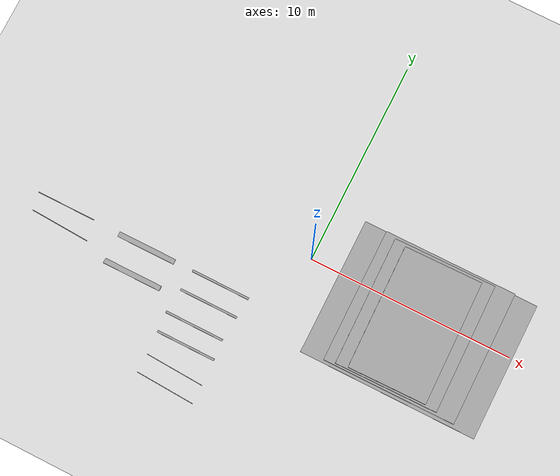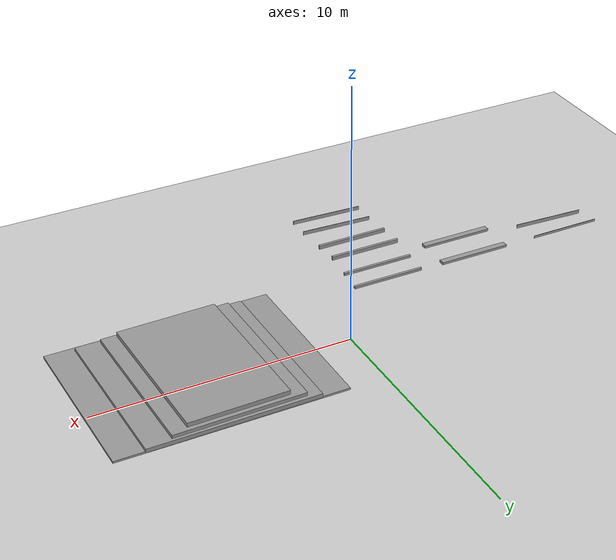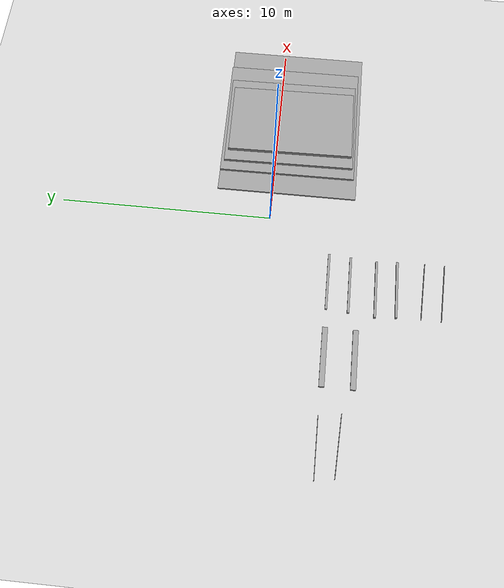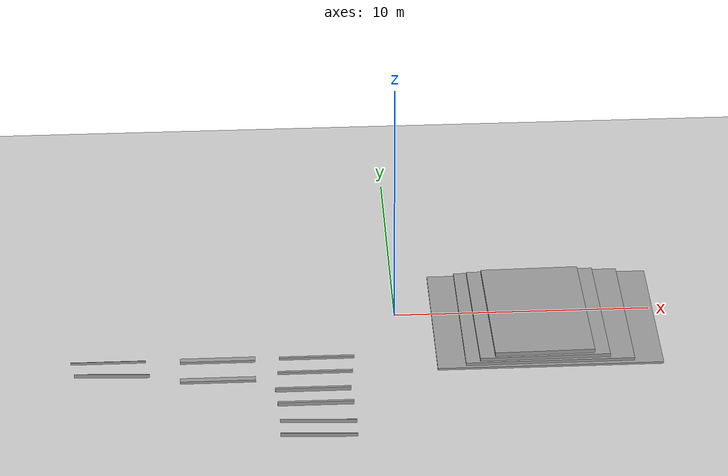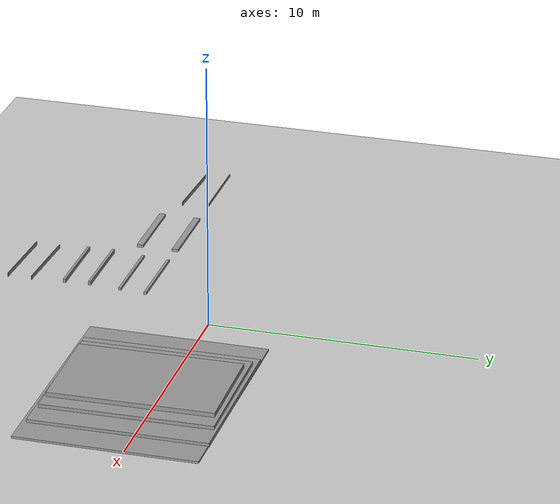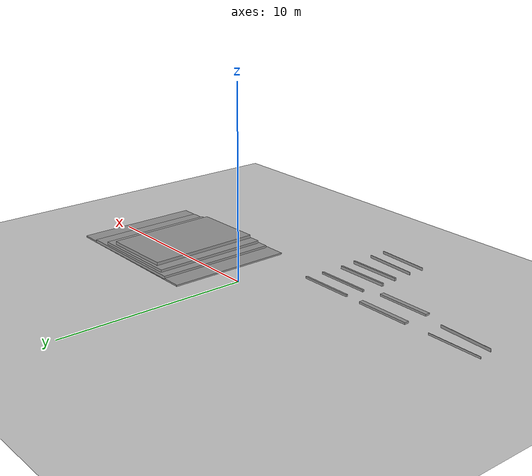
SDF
<sdf version="1.7">
 <world name="default">
  <model name="ground_plane">
   <static>1</static>
   <link name="link">
    <collision name="collision">
     <geometry><plane><normal>0 0 1</normal><size>100 100</size></plane></geometry>
     <surface><friction><ode><mu>0.7</mu><mu2>0.7</mu2></ode></friction></surface>
    </collision>
    <visual name="visual">
     <cast_shadows>0</cast_shadows>
     <geometry><plane><normal>0 0 1</normal><size>100 100</size></plane></geometry>
     <material>
      <script><uri>file://media/materials/scripts/gazebo.material</uri><name>Gazebo/Grey</name></script>
     </material>
    </visual>
   </link>
  </model>
  <light name="sun" type="directional">
   <pose>0 0 10 0 -0 0</pose>
   <diffuse>0.8 0.8 0.8 1</diffuse>
   <specular>0.1 0.1 0.1 1</specular>
   <attenuation>
    <range>1000</range>
    <constant>0.9</constant>
    <linear>0.01</linear>
    <quadratic>0.001</quadratic>
   </attenuation>
   <direction>-0.5 0.5 -1</direction>
   <spot><inner_angle>0</inner_angle><outer_angle>0</outer_angle><falloff>0</falloff></spot>
  </light>
  <gravity>0 0 -9.81</gravity>
  <magnetic_field>6e-06 2.3e-05 -4.2e-05</magnetic_field>
  <atmosphere type="adiabatic"/>
  <physics name="default_physics" default="0" type="ode">
   <max_step_size>0.001</max_step_size>
   <real_time_factor>1</real_time_factor>
   <real_time_update_rate>1000</real_time_update_rate>
  </physics>
  <scene><ambient>0.4 0.4 0.4 1</ambient><background>0.7 0.7 0.7 1</background><shadows>1</shadows></scene>
  <spherical_coordinates>
   <surface_model>EARTH_WGS84</surface_model>
   <latitude_deg>0</latitude_deg>
   <longitude_deg>0</longitude_deg>
   <elevation>0</elevation>
   <heading_deg>0</heading_deg>
  </spherical_coordinates>
  <model name="unit_box">
   <static>1</static>
   <pose>5.78133 -0.659851 0.038678 5e-06 1.5e-05 0.001025</pose>
   <link name="link">
    <inertial>
     <mass>1</mass>
     <inertia>
      <ixx>0.166667</ixx>
      <ixy>0</ixy>
      <ixz>0</ixz>
      <iyy>0.166667</iyy>
      <iyz>0</iyz>
      <izz>0.166667</izz>
     </inertia>
    </inertial>
    <collision name="collision"><geometry><box><size>8.68409 6.67615 0.0802598</size></box></geometry></collision>
    <visual name="visual">
     <geometry><box><size>8.68409 6.67615 0.0802598</size></box></geometry>
     <material>
      <script><name>Gazebo/Grey</name><uri>file://media/materials/scripts/gazebo.material</uri></script>
     </material>
    </visual>
   </link>
  </model>
  <model name="unit_box_clone_clone">
   <static>1</static>
   <pose>5.76077 -0.573205 0.117159 -1.3e-05 1e-05 0.006134</pose>
   <link name="link">
    <inertial>
     <mass>1</mass>
     <inertia>
      <ixx>0.166667</ixx>
      <ixy>0</ixy>
      <ixz>0</ixz>
      <iyy>0.166667</iyy>
      <iyz>0</iyz>
      <izz>0.166667</izz>
     </inertia>
    </inertial>
    <collision name="collision"><geometry><box><size>6.48949 6.53951 0.154753</size></box></geometry></collision>
    <visual name="visual">
     <geometry><box><size>6.48949 6.53951 0.154753</size></box></geometry>
     <material>
      <script><name>Gazebo/Grey</name><uri>file://media/materials/scripts/gazebo.material</uri></script>
     </material>
    </visual>
   </link>
  </model>
  <model name="unit_box_clone_clone_0">
   <static>1</static>
   <pose>5.54636 -0.5858 0.19901 -6.8e-05 1e-05 0.013495</pose>
   <link name="link">
    <inertial>
     <mass>1</mass>
     <inertia>
      <ixx>0.166667</ixx>
      <ixy>0</ixy>
      <ixz>0</ixz>
      <iyy>0.166667</iyy>
      <iyz>0</iyz>
      <izz>0.166667</izz>
     </inertia>
    </inertial>
    <collision name="collision"><geometry><box><size>5.00877 6.30633 0.260401</size></box></geometry></collision>
    <visual name="visual">
     <geometry><box><size>5.00877 6.30633 0.260401</size></box></geometry>
     <material>
      <script><name>Gazebo/Grey</name><uri>file://media/materials/scripts/gazebo.material</uri></script>
     </material>
    </visual>
   </link>
  </model>
  <model name="unit_box_clone_clone_1">
   <static>1</static>
   <pose>5.53214 -0.620934 0.422261 -6.9e-05 1e-05 0.016868</pose>
   <link name="link">
    <inertial>
     <mass>1</mass>
     <inertia>
      <ixx>0.166667</ixx>
      <ixy>0</ixy>
      <ixz>0</ixz>
      <iyy>0.166667</iyy>
      <iyz>0</iyz>
      <izz>0.166667</izz>
     </inertia>
    </inertial>
    <collision name="collision"><geometry><box><size>3.8324 6.06711 0.167446</size></box></geometry></collision>
    <visual name="visual">
     <geometry><box><size>3.8324 6.06711 0.167446</size></box></geometry>
     <material>
      <script><name>Gazebo/Grey</name><uri>file://media/materials/scripts/gazebo.material</uri></script>
     </material>
    </visual>
   </link>
  </model>
  <model name="unit_box_2">
   <link name="link">
    <inertial>
     <mass>1</mass>
     <inertia>
      <ixx>0.166667</ixx>
      <ixy>0</ixy>
      <ixz>0</ixz>
      <iyy>0.166667</iyy>
      <iyz>0</iyz>
      <izz>0.166667</izz>
     </inertia>
    </inertial>
    <visual name="visual">
     <geometry><box><size>2.87721 0.1 0.1</size></box></geometry>
     <material>
      <script><name>Gazebo/Grey</name><uri>file://media/materials/scripts/gazebo.material</uri></script>
      <shader type="pixel"><normal_map>__default__</normal_map></shader>
      <ambient>0.3 0.3 0.3 1</ambient>
      <diffuse>0.7 0.7 0.7 1</diffuse>
      <specular>0.01 0.01 0.01 1</specular>
      <emissive>0 0 0 1</emissive>
     </material>
    </visual>
    <collision name="collision">
     <geometry><box><size>2.87721 0.1 0.1</size></box></geometry>
     <surface>
      <friction>
       <ode><mu>1</mu><mu2>1</mu2><fdir1>0 0 0</fdir1><slip1>0</slip1><slip2>0</slip2></ode>
       <torsional>
        <coefficient>1</coefficient>
        <patch_radius>0</patch_radius>
        <surface_radius>0</surface_radius>
        <use_patch_radius>1</use_patch_radius>
        <ode><slip>0</slip></ode>
       </torsional>
      </friction>
      <bounce><restitution_coefficient>0</restitution_coefficient><threshold>1e+06</threshold></bounce>
      <contact>
       <collide_without_contact>0</collide_without_contact>
       <collide_without_contact_bitmask>1</collide_without_contact_bitmask>
       <collide_bitmask>1</collide_bitmask>
       <ode>
        <soft_cfm>0</soft_cfm>
        <soft_erp>0.2</soft_erp>
        <kp>1e+13</kp>
        <kd>1</kd>
        <max_vel>0.01</max_vel>
        <min_depth>0</min_depth>
       </ode>
       <bullet>
        <split_impulse>1</split_impulse>
        <split_impulse_penetration_threshold>-0.01</split_impulse_penetration_threshold>
        <soft_cfm>0</soft_cfm>
        <soft_erp>0.2</soft_erp>
        <kp>1e+13</kp>
        <kd>1</kd>
       </bullet>
      </contact>
     </surface>
    </collision>
   </link>
   <static>0</static>
   <pose>4.77856 -1.15579 -0.000731 -0.000596 0.035375 -0.01686</pose>
  </model>
  <model name="pipe_0.1">
   <link name="link">
    <inertial>
     <mass>1</mass>
     <inertia>
      <ixx>0.166667</ixx>
      <ixy>0</ixy>
      <ixz>0</ixz>
      <iyy>0.166667</iyy>
      <iyz>0</iyz>
      <izz>0.166667</izz>
     </inertia>
    </inertial>
    <visual name="visual">
     <geometry><box><size>2.87721 0.1 0.1</size></box></geometry>
     <material>
      <script><name>Gazebo/Grey</name><uri>file://media/materials/scripts/gazebo.material</uri></script>
      <shader type="pixel"><normal_map>__default__</normal_map></shader>
      <ambient>0.3 0.3 0.3 1</ambient>
      <diffuse>0.7 0.7 0.7 1</diffuse>
      <specular>0.01 0.01 0.01 1</specular>
      <emissive>0 0 0 1</emissive>
     </material>
    </visual>
    <collision name="collision">
     <geometry><box><size>2.87721 0.1 0.1</size></box></geometry>
     <surface>
      <friction>
       <ode><mu>1</mu><mu2>1</mu2><fdir1>0 0 0</fdir1><slip1>0</slip1><slip2>0</slip2></ode>
       <torsional>
        <coefficient>1</coefficient>
        <patch_radius>0</patch_radius>
        <surface_radius>0</surface_radius>
        <use_patch_radius>1</use_patch_radius>
        <ode><slip>0</slip></ode>
       </torsional>
      </friction>
      <bounce><restitution_coefficient>0</restitution_coefficient><threshold>1e+06</threshold></bounce>
      <contact>
       <collide_without_contact>0</collide_without_contact>
       <collide_without_contact_bitmask>1</collide_without_contact_bitmask>
       <collide_bitmask>1</collide_bitmask>
       <ode>
        <soft_cfm>0</soft_cfm>
        <soft_erp>0.2</soft_erp>
        <kp>1e+13</kp>
        <kd>1</kd>
        <max_vel>0.01</max_vel>
        <min_depth>0</min_depth>
       </ode>
       <bullet>
        <split_impulse>1</split_impulse>
        <split_impulse_penetration_threshold>-0.01</split_impulse_penetration_threshold>
        <soft_cfm>0</soft_cfm>
        <soft_erp>0.2</soft_erp>
        <kp>1e+13</kp>
        <kd>1</kd>
       </bullet>
      </contact>
     </surface>
    </collision>
   </link>
   <static>1</static>
   <pose>-3.25518 -3.93508 0.049491 0 -0 0</pose>
  </model>
  <model name="pipe_0.15">
   <link name="link">
    <inertial>
     <mass>1</mass>
     <inertia>
      <ixx>0.166667</ixx>
      <ixy>0</ixy>
      <ixz>0</ixz>
      <iyy>0.166667</iyy>
      <iyz>0</iyz>
      <izz>0.166667</izz>
     </inertia>
    </inertial>
    <visual name="visual">
     <geometry><box><size>2.87721 0.1 0.15</size></box></geometry>
     <material>
      <script><name>Gazebo/Grey</name><uri>file://media/materials/scripts/gazebo.material</uri></script>
      <shader type="pixel"><normal_map>__default__</normal_map></shader>
      <ambient>0.3 0.3 0.3 1</ambient>
      <diffuse>0.7 0.7 0.7 1</diffuse>
      <specular>0.01 0.01 0.01 1</specular>
      <emissive>0 0 0 1</emissive>
     </material>
    </visual>
    <collision name="collision">
     <geometry><box><size>2.87721 0.1 0.15</size></box></geometry>
     <surface>
      <friction>
       <ode><mu>1</mu><mu2>1</mu2><fdir1>0 0 0</fdir1><slip1>0</slip1><slip2>0</slip2></ode>
       <torsional>
        <coefficient>1</coefficient>
        <patch_radius>0</patch_radius>
        <surface_radius>0</surface_radius>
        <use_patch_radius>1</use_patch_radius>
        <ode><slip>0</slip></ode>
       </torsional>
      </friction>
      <bounce><restitution_coefficient>0</restitution_coefficient><threshold>1e+06</threshold></bounce>
      <contact>
       <collide_without_contact>0</collide_without_contact>
       <collide_without_contact_bitmask>1</collide_without_contact_bitmask>
       <collide_bitmask>1</collide_bitmask>
       <ode>
        <soft_cfm>0</soft_cfm>
        <soft_erp>0.2</soft_erp>
        <kp>1e+13</kp>
        <kd>1</kd>
        <max_vel>0.01</max_vel>
        <min_depth>0</min_depth>
       </ode>
       <bullet>
        <split_impulse>1</split_impulse>
        <split_impulse_penetration_threshold>-0.01</split_impulse_penetration_threshold>
        <soft_cfm>0</soft_cfm>
        <soft_erp>0.2</soft_erp>
        <kp>1e+13</kp>
        <kd>1</kd>
       </bullet>
      </contact>
     </surface>
    </collision>
   </link>
   <static>1</static>
   <pose>-3.36878 -5.1364 0.073658 0 -0 0</pose>
  </model>
  <model name="pipe_0.1_clone">
   <link name="link">
    <inertial>
     <mass>1</mass>
     <inertia>
      <ixx>0.166667</ixx>
      <ixy>0</ixy>
      <ixz>0</ixz>
      <iyy>0.166667</iyy>
      <iyz>0</iyz>
      <izz>0.166667</izz>
     </inertia>
    </inertial>
    <visual name="visual">
     <geometry><box><size>2.87721 0.1 0.1</size></box></geometry>
     <material>
      <script><name>Gazebo/Grey</name><uri>file://media/materials/scripts/gazebo.material</uri></script>
      <shader type="pixel"><normal_map>__default__</normal_map></shader>
      <ambient>0.3 0.3 0.3 1</ambient>
      <diffuse>0.7 0.7 0.7 1</diffuse>
      <specular>0.01 0.01 0.01 1</specular>
      <emissive>0 0 0 1</emissive>
     </material>
    </visual>
    <collision name="collision">
     <geometry><box><size>2.87721 0.1 0.1</size></box></geometry>
     <surface>
      <friction>
       <ode><mu>1</mu><mu2>1</mu2><fdir1>0 0 0</fdir1><slip1>0</slip1><slip2>0</slip2></ode>
       <torsional>
        <coefficient>1</coefficient>
        <patch_radius>0</patch_radius>
        <surface_radius>0</surface_radius>
        <use_patch_radius>1</use_patch_radius>
        <ode><slip>0</slip></ode>
       </torsional>
      </friction>
      <bounce><restitution_coefficient>0</restitution_coefficient><threshold>1e+06</threshold></bounce>
      <contact>
       <collide_without_contact>0</collide_without_contact>
       <collide_without_contact_bitmask>1</collide_without_contact_bitmask>
       <collide_bitmask>1</collide_bitmask>
       <ode>
        <soft_cfm>0</soft_cfm>
        <soft_erp>0.2</soft_erp>
        <kp>1e+13</kp>
        <kd>1</kd>
        <max_vel>0.01</max_vel>
        <min_depth>0</min_depth>
       </ode>
       <bullet>
        <split_impulse>1</split_impulse>
        <split_impulse_penetration_threshold>-0.01</split_impulse_penetration_threshold>
        <soft_cfm>0</soft_cfm>
        <soft_erp>0.2</soft_erp>
        <kp>1e+13</kp>
        <kd>1</kd>
       </bullet>
      </contact>
     </surface>
    </collision>
   </link>
   <static>1</static>
   <pose>-3.16301 -2.92769 0.049491 0 -0 0</pose>
  </model>
  <model name="pipe_0.15_clone">
   <link name="link">
    <inertial>
     <mass>1</mass>
     <inertia>
      <ixx>0.166667</ixx>
      <ixy>0</ixy>
      <ixz>0</ixz>
      <iyy>0.166667</iyy>
      <iyz>0</iyz>
      <izz>0.166667</izz>
     </inertia>
    </inertial>
    <visual name="visual">
     <geometry><box><size>2.87721 0.1 0.15</size></box></geometry>
     <material>
      <script><name>Gazebo/Grey</name><uri>file://media/materials/scripts/gazebo.material</uri></script>
      <shader type="pixel"><normal_map>__default__</normal_map></shader>
      <ambient>0.3 0.3 0.3 1</ambient>
      <diffuse>0.7 0.7 0.7 1</diffuse>
      <specular>0.01 0.01 0.01 1</specular>
      <emissive>0 0 0 1</emissive>
     </material>
    </visual>
    <collision name="collision">
     <geometry><box><size>2.87721 0.1 0.15</size></box></geometry>
     <surface>
      <friction>
       <ode><mu>1</mu><mu2>1</mu2><fdir1>0 0 0</fdir1><slip1>0</slip1><slip2>0</slip2></ode>
       <torsional>
        <coefficient>1</coefficient>
        <patch_radius>0</patch_radius>
        <surface_radius>0</surface_radius>
        <use_patch_radius>1</use_patch_radius>
        <ode><slip>0</slip></ode>
       </torsional>
      </friction>
      <bounce><restitution_coefficient>0</restitution_coefficient><threshold>1e+06</threshold></bounce>
      <contact>
       <collide_without_contact>0</collide_without_contact>
       <collide_without_contact_bitmask>1</collide_without_contact_bitmask>
       <collide_bitmask>1</collide_bitmask>
       <ode>
        <soft_cfm>0</soft_cfm>
        <soft_erp>0.2</soft_erp>
        <kp>1e+13</kp>
        <kd>1</kd>
        <max_vel>0.01</max_vel>
        <min_depth>0</min_depth>
       </ode>
       <bullet>
        <split_impulse>1</split_impulse>
        <split_impulse_penetration_threshold>-0.01</split_impulse_penetration_threshold>
        <soft_cfm>0</soft_cfm>
        <soft_erp>0.2</soft_erp>
        <kp>1e+13</kp>
        <kd>1</kd>
       </bullet>
      </contact>
     </surface>
    </collision>
   </link>
   <static>1</static>
   <pose>-3.30074 -6.09274 0.073658 0 -0 0</pose>
  </model>
  <model name="pipe_0.1_clone_clone">
   <link name="link">
    <inertial>
     <mass>1</mass>
     <inertia>
      <ixx>0.166667</ixx>
      <ixy>0</ixy>
      <ixz>0</ixz>
      <iyy>0.166667</iyy>
      <iyz>0</iyz>
      <izz>0.166667</izz>
     </inertia>
    </inertial>
    <visual name="visual">
     <geometry><box><size>2.87721 0.243662 0.1</size></box></geometry>
     <material>
      <script><name>Gazebo/Grey</name><uri>file://media/materials/scripts/gazebo.material</uri></script>
      <shader type="pixel"><normal_map>__default__</normal_map></shader>
      <ambient>0.3 0.3 0.3 1</ambient>
      <diffuse>0.7 0.7 0.7 1</diffuse>
      <specular>0.01 0.01 0.01 1</specular>
      <emissive>0 0 0 1</emissive>
     </material>
    </visual>
    <collision name="collision">
     <geometry><box><size>2.87721 0.243662 0.1</size></box></geometry>
     <surface>
      <friction>
       <ode><mu>1</mu><mu2>1</mu2><fdir1>0 0 0</fdir1><slip1>0</slip1><slip2>0</slip2></ode>
       <torsional>
        <coefficient>1</coefficient>
        <patch_radius>0</patch_radius>
        <surface_radius>0</surface_radius>
        <use_patch_radius>1</use_patch_radius>
        <ode><slip>0</slip></ode>
       </torsional>
      </friction>
      <bounce><restitution_coefficient>0</restitution_coefficient><threshold>1e+06</threshold></bounce>
      <contact>
       <collide_without_contact>0</collide_without_contact>
       <collide_without_contact_bitmask>1</collide_without_contact_bitmask>
       <collide_bitmask>1</collide_bitmask>
       <ode>
        <soft_cfm>0</soft_cfm>
        <soft_erp>0.2</soft_erp>
        <kp>1e+13</kp>
        <kd>1</kd>
        <max_vel>0.01</max_vel>
        <min_depth>0</min_depth>
       </ode>
       <bullet>
        <split_impulse>1</split_impulse>
        <split_impulse_penetration_threshold>-0.01</split_impulse_penetration_threshold>
        <soft_cfm>0</soft_cfm>
        <soft_erp>0.2</soft_erp>
        <kp>1e+13</kp>
        <kd>1</kd>
       </bullet>
      </contact>
     </surface>
    </collision>
   </link>
   <static>1</static>
   <pose>-6.95701 -2.94768 0.049491 0 -0 0</pose>
  </model>
  <model name="pipe_0.1_clone_clone_clone">
   <link name="link">
    <inertial>
     <mass>1</mass>
     <inertia>
      <ixx>0.166667</ixx>
      <ixy>0</ixy>
      <ixz>0</ixz>
      <iyy>0.166667</iyy>
      <iyz>0</iyz>
      <izz>0.166667</izz>
     </inertia>
    </inertial>
    <visual name="visual">
     <geometry><box><size>2.87721 0.243662 0.1</size></box></geometry>
     <material>
      <script><name>Gazebo/Grey</name><uri>file://media/materials/scripts/gazebo.material</uri></script>
      <shader type="pixel"><normal_map>__default__</normal_map></shader>
      <ambient>0.3 0.3 0.3 1</ambient>
      <diffuse>0.7 0.7 0.7 1</diffuse>
      <specular>0.01 0.01 0.01 1</specular>
      <emissive>0 0 0 1</emissive>
     </material>
    </visual>
    <collision name="collision">
     <geometry><box><size>2.87721 0.243662 0.1</size></box></geometry>
     <surface>
      <friction>
       <ode><mu>1</mu><mu2>1</mu2><fdir1>0 0 0</fdir1><slip1>0</slip1><slip2>0</slip2></ode>
       <torsional>
        <coefficient>1</coefficient>
        <patch_radius>0</patch_radius>
        <surface_radius>0</surface_radius>
        <use_patch_radius>1</use_patch_radius>
        <ode><slip>0</slip></ode>
       </torsional>
      </friction>
      <bounce><restitution_coefficient>0</restitution_coefficient><threshold>1e+06</threshold></bounce>
      <contact>
       <collide_without_contact>0</collide_without_contact>
       <collide_without_contact_bitmask>1</collide_without_contact_bitmask>
       <collide_bitmask>1</collide_bitmask>
       <ode>
        <soft_cfm>0</soft_cfm>
        <soft_erp>0.2</soft_erp>
        <kp>1e+13</kp>
        <kd>1</kd>
        <max_vel>0.01</max_vel>
        <min_depth>0</min_depth>
       </ode>
       <bullet>
        <split_impulse>1</split_impulse>
        <split_impulse_penetration_threshold>-0.01</split_impulse_penetration_threshold>
        <soft_cfm>0</soft_cfm>
        <soft_erp>0.2</soft_erp>
        <kp>1e+13</kp>
        <kd>1</kd>
       </bullet>
      </contact>
     </surface>
    </collision>
   </link>
   <static>1</static>
   <pose>-6.96811 -4.32315 0.049491 0 -0 0</pose>
  </model>
  <model name="pipe_0.1_clone_clone_clone_0">
   <link name="link">
    <inertial>
     <mass>1</mass>
     <inertia>
      <ixx>0.166667</ixx>
      <ixy>0</ixy>
      <ixz>0</ixz>
      <iyy>0.166667</iyy>
      <iyz>0</iyz>
      <izz>0.166667</izz>
     </inertia>
    </inertial>
    <visual name="visual">
     <geometry><box><size>2.87721 0.020298 0.1</size></box></geometry>
     <material>
      <script><name>Gazebo/Grey</name><uri>file://media/materials/scripts/gazebo.material</uri></script>
      <shader type="pixel"><normal_map>__default__</normal_map></shader>
      <ambient>0.3 0.3 0.3 1</ambient>
      <diffuse>0.7 0.7 0.7 1</diffuse>
      <specular>0.01 0.01 0.01 1</specular>
      <emissive>0 0 0 1</emissive>
     </material>
    </visual>
    <collision name="collision">
     <geometry><box><size>2.87721 0.020298 0.1</size></box></geometry>
     <surface>
      <friction>
       <ode><mu>1</mu><mu2>1</mu2><fdir1>0 0 0</fdir1><slip1>0</slip1><slip2>0</slip2></ode>
       <torsional>
        <coefficient>1</coefficient>
        <patch_radius>0</patch_radius>
        <surface_radius>0</surface_radius>
        <use_patch_radius>1</use_patch_radius>
        <ode><slip>0</slip></ode>
       </torsional>
      </friction>
      <bounce><restitution_coefficient>0</restitution_coefficient><threshold>1e+06</threshold></bounce>
      <contact>
       <collide_without_contact>0</collide_without_contact>
       <collide_without_contact_bitmask>1</collide_without_contact_bitmask>
       <collide_bitmask>1</collide_bitmask>
       <ode>
        <soft_cfm>0</soft_cfm>
        <soft_erp>0.2</soft_erp>
        <kp>1e+13</kp>
        <kd>1</kd>
        <max_vel>0.01</max_vel>
        <min_depth>0</min_depth>
       </ode>
       <bullet>
        <split_impulse>1</split_impulse>
        <split_impulse_penetration_threshold>-0.01</split_impulse_penetration_threshold>
        <soft_cfm>0</soft_cfm>
        <soft_erp>0.2</soft_erp>
        <kp>1e+13</kp>
        <kd>1</kd>
       </bullet>
      </contact>
     </surface>
    </collision>
   </link>
   <static>1</static>
   <pose>-11.1597 -2.88495 0.049491 0 -0 0</pose>
  </model>
  <model name="pipe_0.1_clone_clone_clone_0_clone">
   <link name="link">
    <inertial>
     <mass>1</mass>
     <inertia>
      <ixx>0.166667</ixx>
      <ixy>0</ixy>
      <ixz>0</ixz>
      <iyy>0.166667</iyy>
      <iyz>0</iyz>
      <izz>0.166667</izz>
     </inertia>
    </inertial>
    <visual name="visual">
     <geometry><box><size>2.87721 0.020298 0.157388</size></box></geometry>
     <material>
      <script><name>Gazebo/Grey</name><uri>file://media/materials/scripts/gazebo.material</uri></script>
      <shader type="pixel"><normal_map>__default__</normal_map></shader>
      <ambient>0.3 0.3 0.3 1</ambient>
      <diffuse>0.7 0.7 0.7 1</diffuse>
      <specular>0.01 0.01 0.01 1</specular>
      <emissive>0 0 0 1</emissive>
     </material>
    </visual>
    <collision name="collision">
     <geometry><box><size>2.87721 0.020298 0.157388</size></box></geometry>
     <surface>
      <friction>
       <ode><mu>1</mu><mu2>1</mu2><fdir1>0 0 0</fdir1><slip1>0</slip1><slip2>0</slip2></ode>
       <torsional>
        <coefficient>1</coefficient>
        <patch_radius>0</patch_radius>
        <surface_radius>0</surface_radius>
        <use_patch_radius>1</use_patch_radius>
        <ode><slip>0</slip></ode>
       </torsional>
      </friction>
      <bounce><restitution_coefficient>0</restitution_coefficient><threshold>1e+06</threshold></bounce>
      <contact>
       <collide_without_contact>0</collide_without_contact>
       <collide_without_contact_bitmask>1</collide_without_contact_bitmask>
       <collide_bitmask>1</collide_bitmask>
       <ode>
        <soft_cfm>0</soft_cfm>
        <soft_erp>0.2</soft_erp>
        <kp>1e+13</kp>
        <kd>1</kd>
        <max_vel>0.01</max_vel>
        <min_depth>0</min_depth>
       </ode>
       <bullet>
        <split_impulse>1</split_impulse>
        <split_impulse_penetration_threshold>-0.01</split_impulse_penetration_threshold>
        <soft_cfm>0</soft_cfm>
        <soft_erp>0.2</soft_erp>
        <kp>1e+13</kp>
        <kd>1</kd>
       </bullet>
      </contact>
     </surface>
    </collision>
   </link>
   <static>1</static>
   <pose>-10.9974 -3.81674 0.049491 0 0 -0.049795</pose>
  </model>
  <model name="pipe_0.1_clone_clone_clone_0_clone_clone">
   <link name="link">
    <inertial>
     <mass>1</mass>
     <inertia>
      <ixx>0.166667</ixx>
      <ixy>0</ixy>
      <ixz>0</ixz>
      <iyy>0.166667</iyy>
      <iyz>0</iyz>
      <izz>0.166667</izz>
     </inertia>
    </inertial>
    <visual name="visual">
     <geometry><box><size>2.87721 0.020298 0.157388</size></box></geometry>
     <material>
      <script><name>Gazebo/Grey</name><uri>file://media/materials/scripts/gazebo.material</uri></script>
      <shader type="pixel"><normal_map>__default__</normal_map></shader>
      <ambient>0.3 0.3 0.3 1</ambient>
      <diffuse>0.7 0.7 0.7 1</diffuse>
      <specular>0.01 0.01 0.01 1</specular>
      <emissive>0 0 0 1</emissive>
     </material>
    </visual>
    <collision name="collision">
     <geometry><box><size>2.87721 0.020298 0.157388</size></box></geometry>
     <surface>
      <friction>
       <ode><mu>1</mu><mu2>1</mu2><fdir1>0 0 0</fdir1><slip1>0</slip1><slip2>0</slip2></ode>
       <torsional>
        <coefficient>1</coefficient>
        <patch_radius>0</patch_radius>
        <surface_radius>0</surface_radius>
        <use_patch_radius>1</use_patch_radius>
        <ode><slip>0</slip></ode>
       </torsional>
      </friction>
      <bounce><restitution_coefficient>0</restitution_coefficient><threshold>1e+06</threshold></bounce>
      <contact>
       <collide_without_contact>0</collide_without_contact>
       <collide_without_contact_bitmask>1</collide_without_contact_bitmask>
       <collide_bitmask>1</collide_bitmask>
       <ode>
        <soft_cfm>0</soft_cfm>
        <soft_erp>0.2</soft_erp>
        <kp>1e+13</kp>
        <kd>1</kd>
        <max_vel>0.01</max_vel>
        <min_depth>0</min_depth>
       </ode>
       <bullet>
        <split_impulse>1</split_impulse>
        <split_impulse_penetration_threshold>-0.01</split_impulse_penetration_threshold>
        <soft_cfm>0</soft_cfm>
        <soft_erp>0.2</soft_erp>
        <kp>1e+13</kp>
        <kd>1</kd>
       </bullet>
      </contact>
     </surface>
    </collision>
   </link>
   <static>1</static>
   <pose>-3.2406 -7.28865 0.049491 0 0 -0.049795</pose>
  </model>
  <model name="pipe_0.1_clone_clone_clone_0_clone_clone_0">
   <link name="link">
    <inertial>
     <mass>1</mass>
     <inertia>
      <ixx>0.166667</ixx>
      <ixy>0</ixy>
      <ixz>0</ixz>
      <iyy>0.166667</iyy>
      <iyz>0</iyz>
      <izz>0.166667</izz>
     </inertia>
    </inertial>
    <visual name="visual">
     <geometry><box><size>2.87721 0.020298 0.157388</size></box></geometry>
     <material>
      <script><name>Gazebo/Grey</name><uri>file://media/materials/scripts/gazebo.material</uri></script>
      <shader type="pixel"><normal_map>__default__</normal_map></shader>
      <ambient>0.3 0.3 0.3 1</ambient>
      <diffuse>0.7 0.7 0.7 1</diffuse>
      <specular>0.01 0.01 0.01 1</specular>
      <emissive>0 0 0 1</emissive>
     </material>
    </visual>
    <collision name="collision">
     <geometry><box><size>2.87721 0.020298 0.157388</size></box></geometry>
     <surface>
      <friction>
       <ode><mu>1</mu><mu2>1</mu2><fdir1>0 0 0</fdir1><slip1>0</slip1><slip2>0</slip2></ode>
       <torsional>
        <coefficient>1</coefficient>
        <patch_radius>0</patch_radius>
        <surface_radius>0</surface_radius>
        <use_patch_radius>1</use_patch_radius>
        <ode><slip>0</slip></ode>
       </torsional>
      </friction>
      <bounce><restitution_coefficient>0</restitution_coefficient><threshold>1e+06</threshold></bounce>
      <contact>
       <collide_without_contact>0</collide_without_contact>
       <collide_without_contact_bitmask>1</collide_without_contact_bitmask>
       <collide_bitmask>1</collide_bitmask>
       <ode>
        <soft_cfm>0</soft_cfm>
        <soft_erp>0.2</soft_erp>
        <kp>1e+13</kp>
        <kd>1</kd>
        <max_vel>0.01</max_vel>
        <min_depth>0</min_depth>
       </ode>
       <bullet>
        <split_impulse>1</split_impulse>
        <split_impulse_penetration_threshold>-0.01</split_impulse_penetration_threshold>
        <soft_cfm>0</soft_cfm>
        <soft_erp>0.2</soft_erp>
        <kp>1e+13</kp>
        <kd>1</kd>
       </bullet>
      </contact>
     </surface>
    </collision>
   </link>
   <static>1</static>
   <pose>-3.25727 -8.20455 0.049491 0 0 -0.049795</pose>
  </model>
 </world>
</sdf>
